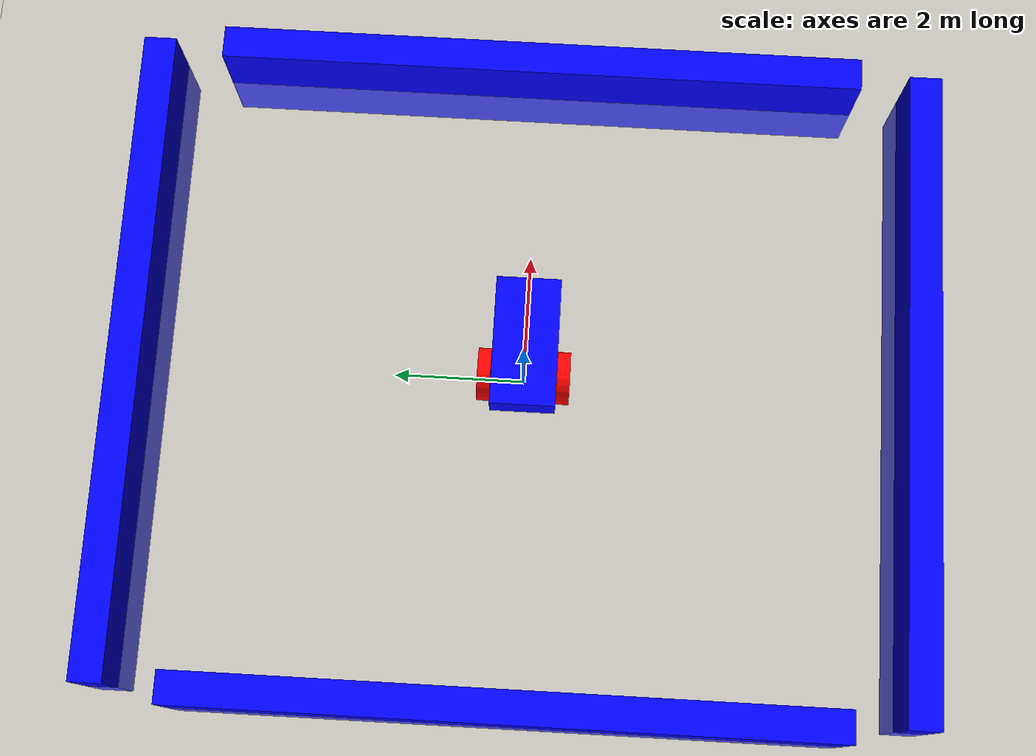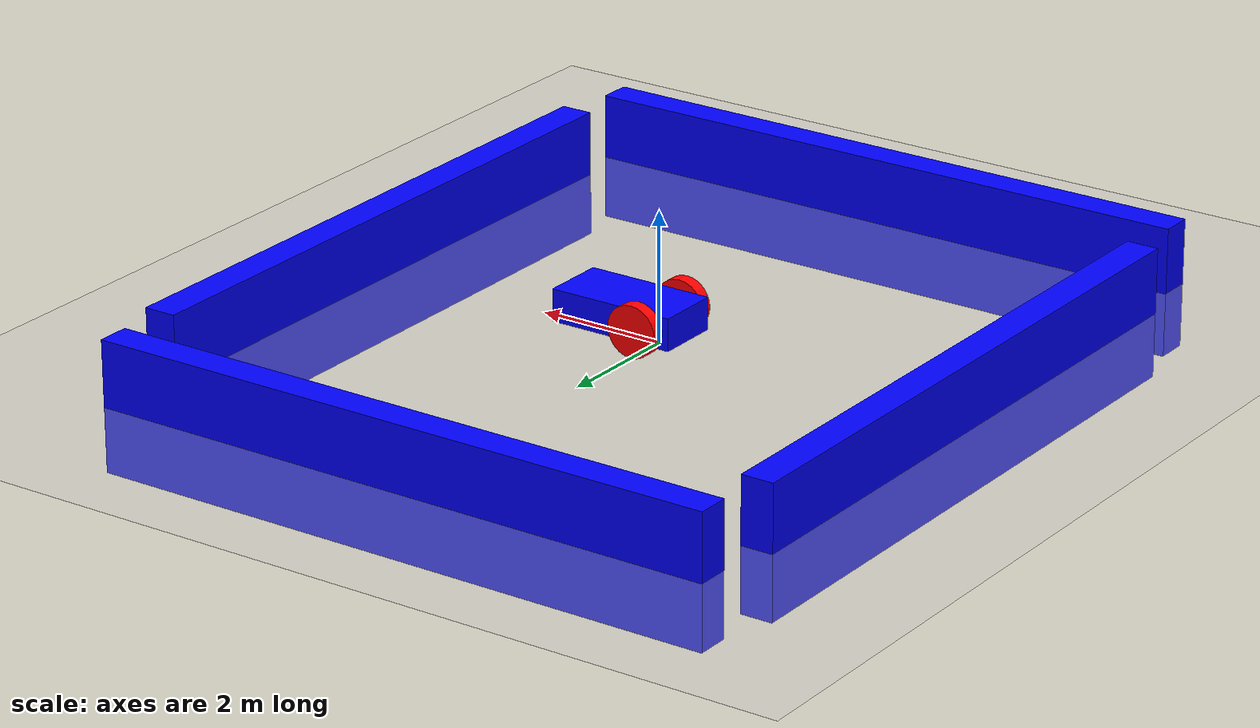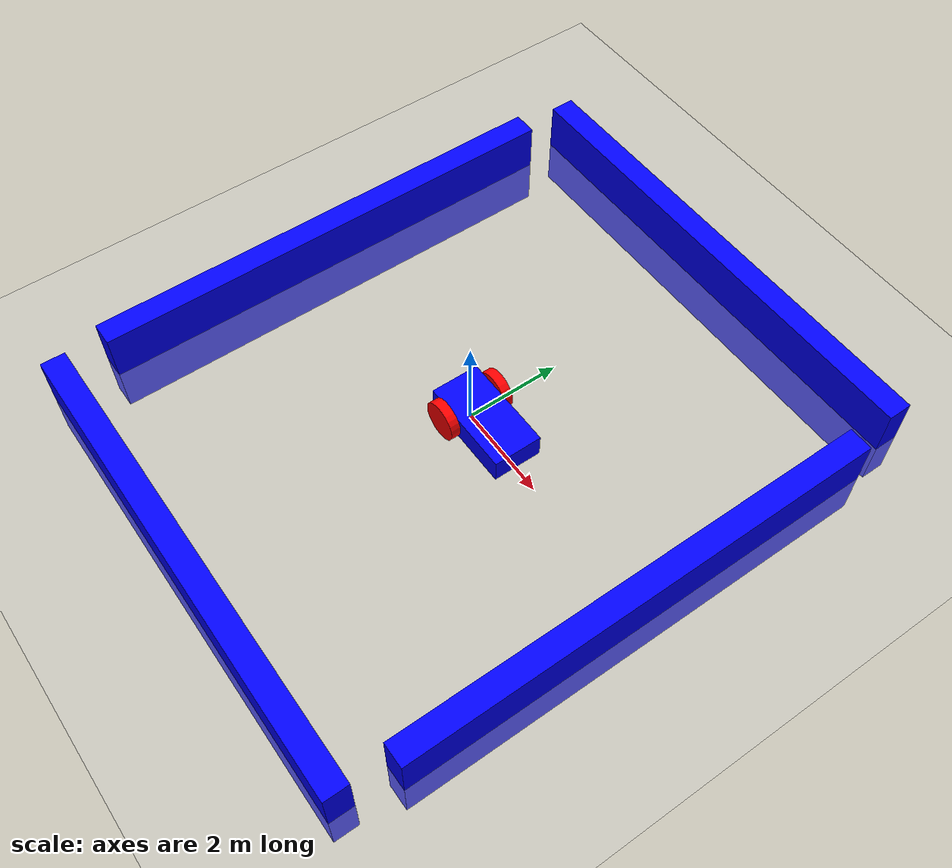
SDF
<?xml version="1.0" ?>
<sdf version="1.7">
    <world name="car_world">
        <plugin filename="libignition-gazebo-imu-system.so"
            name="ignition::gazebo::systems::Imu">
        </plugin>
        <plugin filename="libignition-gazebo-contact-system.so"
            name="ignition::gazebo::systems::Contact">
        </plugin>
       <physics name="1ms" type="ode">
            <max_step_size>0.001</max_step_size>
            <real_time_factor>1.0</real_time_factor>
        </physics>
        <plugin
            filename="ignition-gazebo-physics-system"
            name="ignition::gazebo::systems::Physics">
        </plugin>
        <plugin
            filename="ignition-gazebo-user-commands-system"
            name="ignition::gazebo::systems::UserCommands">
        </plugin>
        <plugin
            filename="ignition-gazebo-scene-broadcaster-system"
            name="ignition::gazebo::systems::SceneBroadcaster">
        </plugin>
        <plugin
           filename="ignition-gazebo-imu-system"
           name="ignition::gazebo::systems::Imu">
        </plugin>
        <plugin
            filename="ignition-gazebo-sensors-system"
            name="ignition::gazebo::systems::Sensors">
            <render_engine>ogre2</render_engine>
        </plugin>
        <plugin
            filename="ignition-gazebo-contact-system"
            name="ignition::gazebo::systems::Contact">
        </plugin>

        <gui fullscreen="0">

            <!-- 3D scene -->
            <plugin filename="GzScene3D" name="3D View">
                <ignition-gui>
                <title>3D View</title>
                <property type="bool" key="showTitleBar">false</property>
                <property type="string" key="state">docked</property>
                </ignition-gui>

                <engine>ogre2</engine>
                <scene>scene</scene>
                <ambient_light>0.4 0.4 0.4</ambient_light>
                <background_color>0.8 0.8 0.8</background_color>
            </plugin>

            <!-- World control -->
            <plugin filename="WorldControl" name="World control">
                <ignition-gui>
                <title>World control</title>
                <property type="bool" key="showTitleBar">false</property>
                <property type="bool" key="resizable">false</property>
                <property type="double" key="height">72</property>
                <property type="double" key="width">121</property>
                <property type="double" key="z">1</property>

                <property type="string" key="state">floating</property>
                <anchors target="3D View">
                    <line own="left" target="left"/>
                    <line own="bottom" target="bottom"/>
                </anchors>
                </ignition-gui>

                <play_pause>true</play_pause>
                <step>true</step>
                <start_paused>true</start_paused>
                <service>/world/Moving_robot/control</service>
                <stats_topic>/world/Moving_robot/stats</stats_topic>
            </plugin>

            <!-- World statistics -->
            <plugin filename="WorldStats" name="World stats">
                <ignition-gui>
                <title>World stats</title>
                <property type="bool" key="showTitleBar">false</property>
                <property type="bool" key="resizable">false</property>
                <property type="double" key="height">110</property>
                <property type="double" key="width">290</property>
                <property type="double" key="z">1</property>

                <property type="string" key="state">floating</property>
                <anchors target="3D View">
                    <line own="right" target="right"/>
                    <line own="bottom" target="bottom"/>
                </anchors>
                </ignition-gui>

                <sim_time>true</sim_time>
                <real_time>true</real_time>
                <real_time_factor>true</real_time_factor>
                <iterations>true</iterations>
                <topic>/world/Moving_robot/stats</topic>

            </plugin>

            <!-- Entity tree -->
            <plugin filename="EntityTree" name="Entity tree">
            </plugin>

            <!-- KeyPublisher plugin-->
            <plugin filename="KeyPublisher" name="Key Publisher"/>

        </gui>

<model name='vehicle_blue' canonical_link='chassis'>

<static> false </static>

    <pose relative_to='world'>0 0 0 0 0 0</pose>

    <frame name="lidar_frame" attached_to='chassis'>
        <pose>0.8 0 0.5 0 0 0</pose>
    </frame>

<link name='chassis'>

    <pose relative_to='__model__'>0.5 0 0.4 0 0 0</pose>

<inertial> <!--inertial properties of the link mass, inertia matrix-->
<mass>1.14395</mass>
<inertia>
<ixx>0.095329</ixx>
<ixy>0</ixy>
<ixz>0</ixz>
<iyy>0.381317</iyy>
<iyz>0</iyz>
<izz>0.476646</izz>
</inertia>
</inertial>
<visual name='visual'>
<geometry>
<box>
<size>2.0 1.0 0.5</size>
</box>
</geometry>
      <!--let's add color to our link-->
        <material>
            <ambient>0.0 0.0 1.0 1</ambient>
         <diffuse>0.0 0.0 1.0 1</diffuse>
            <specular>0.0 0.0 1.0 1</specular>
        </material>
    </visual>
            <collision name='collision'>
            <geometry>
                <box>
                    <size>2.0 1.0 0.5</size>
                </box>
            </geometry>
        </collision>

        <sensor name="imu_sensor" type="imu">
    <always_on>1</always_on>
    <update_rate>1</update_rate>
    <visualize>true</visualize>
    <topic>imu</topic>
</sensor>

<sensor name='gpu_lidar' type='gpu_lidar'>
    <pose relative_to='lidar_frame'>0 0 0 0 0 0</pose>
    <topic>lidar</topic>
    <update_rate>100</update_rate>
    <ray>
        <scan>
            <horizontal>
                <samples>640</samples>
                <resolution>1</resolution>
                <min_angle>-1.396263</min_angle>
                <max_angle>1.396263</max_angle>
            </horizontal>
            <vertical>
                <samples>1</samples>
                <resolution>1</resolution>
                <min_angle>0</min_angle>
                <max_angle>0</max_angle>
            </vertical>
        </scan>
        <range>
            <min>0.1</min>
            <max>10</max>
            <resolution>0.01</resolution>
        </range>
    </ray>
    <always_on>1</always_on>
    <visualize>true</visualize>
</sensor>
    </link>

    <link name='left_wheel'>
    <pose relative_to="chassis">-0.5 0.6 0 -1.5707 0 0</pose>
    <inertial>
        <mass>1</mass>
        <inertia>
            <ixx>0.043333</ixx>
            <ixy>0</ixy>
            <ixz>0</ixz>
            <iyy>0.043333</iyy>
            <iyz>0</iyz>
            <izz>0.08</izz>
        </inertia>
    </inertial>
        <visual name='visual'>
        <geometry>
            <cylinder>
                <radius>0.4</radius>
                <length>0.2</length>
            </cylinder>
        </geometry>
        <material>
            <ambient>1.0 0.0 0.0 1</ambient>
            <diffuse>1.0 0.0 0.0 1</diffuse>
            <specular>1.0 0.0 0.0 1</specular>
        </material>
    </visual>
    <collision name='collision'>
        <geometry>
            <cylinder>
                <radius>0.4</radius>
                <length>0.2</length>
            </cylinder>
        </geometry>
    </collision>
    </link>

   <link name='right_wheel'>
    <pose relative_to="chassis">-0.5 -0.6 0 -1.5707 0 0</pose>
    <inertial>
        <mass>1</mass>
        <inertia>
            <ixx>0.043333</ixx>
            <ixy>0</ixy>
            <ixz>0</ixz>
            <iyy>0.043333</iyy>
            <iyz>0</iyz>
            <izz>0.08</izz>
        </inertia>
    </inertial>
        <visual name='visual'>
        <geometry>
            <cylinder>
                <radius>0.4</radius>
                <length>0.2</length>
            </cylinder>
        </geometry>
        <material>
            <ambient>1.0 0.0 0.0 1</ambient>
            <diffuse>1.0 0.0 0.0 1</diffuse>
            <specular>1.0 0.0 0.0 1</specular>
        </material>
    </visual>
    <collision name='collision'>
        <geometry>
            <cylinder>
                <radius>0.4</radius>
                <length>0.2</length>
            </cylinder>
        </geometry>
    </collision>
</link>

<frame name="caster_frame" attached_to='chassis'>
    <pose>0.8 0 -2.2 0 0 0</pose>
</frame>

<!--caster wheel-->
<link name='caster'>
        <pose relative_to='caster_frame'>0 0 2 0 0 0</pose>
    <inertial>
        <mass>1</mass>
        <inertia>
            <ixx>0.016</ixx>
            <ixy>0</ixy>
            <ixz>0</ixz>
            <iyy>0.016</iyy>
            <iyz>0</iyz>
            <izz>0.016</izz>
        </inertia>
    </inertial>
    <visual name='visual'>
        <geometry>
            <sphere>
                <radius>0.2</radius>
            </sphere>
        </geometry>
        <material>
            <ambient>0.0 1 0.0 1</ambient>
            <diffuse>0.0 1 0.0 1</diffuse>
            <specular>0.0 1 0.0 1</specular>
        </material>
    </visual>
    <collision name='collision'>
        <geometry>
            <sphere>
                <radius>0.2</radius>
            </sphere>
        </geometry>
    </collision>
</link>
<joint name='left_wheel_joint' type='revolute'>
    <pose relative_to='left_wheel'/>
        <parent>chassis</parent>
    <child>left_wheel</child>
    <axis>
        <xyz expressed_in='__model__'>0 1 0</xyz> <!--can be defined as any frame or even arbitrary frames-->
        <limit>
            <lower>-1.79769e+308</lower>    <!--negative infinity-->
            <upper>1.79769e+308</upper>     <!--positive infinity-->
        </limit>
    </axis>
</joint>
<joint name='right_wheel_joint' type='revolute'>
    <pose relative_to='right_wheel'/>
    <parent>chassis</parent>
    <child>right_wheel</child>
    <axis>
        <xyz expressed_in='__model__'>0 1 0</xyz>
        <limit>
            <lower>-1.79769e+308</lower>    <!--negative infinity-->
            <upper>1.79769e+308</upper>     <!--positive infinity-->
        </limit>
    </axis>
</joint>
<joint name='caster_wheel' type='ball'>
    <parent>chassis</parent>
    <child>caster</child>
</joint>

<plugin
    filename="libignition-gazebo-diff-drive-system.so"
    name="ignition::gazebo::systems::DiffDrive">
    <left_joint>left_wheel_joint</left_joint>
    <right_joint>right_wheel_joint</right_joint>
    <wheel_separation>1.2</wheel_separation>
    <wheel_radius>0.4</wheel_radius>
    <odom_publish_frequency>1</odom_publish_frequency>
    <topic>cmd_vel</topic>
</plugin>

<!-- Move forward/backward -->
<plugin filename="libignition-gazebo-triggered-publisher-system.so"
        name="ignition::gazebo::systems::TriggeredPublisher">
    <input type="ignition.msgs.Int32" topic="/keyboard/keypress">
        <match field="data">16777235</match>

    </input>
    <output type="ignition.msgs.Twist" topic="/cmd_vel">
        linear: {x: 0.5}, angular: {z: 0.0}
    </output>
</plugin>
<plugin filename="libignition-gazebo-triggered-publisher-system.so"
        name="ignition::gazebo::systems::TriggeredPublisher">
    <input type="ignition.msgs.Int32" topic="/keyboard/keypress">
        <match field="data">16777237</match>
    </input>
    <output type="ignition.msgs.Twist" topic="/cmd_vel">
        linear: {x: -0.5}, angular: {z: 0.0}
    </output>
</plugin>
  <!--stop when hit the wall-->
        <plugin filename="ignition-gazebo-triggered-publisher-system"
                name="ignition::gazebo::systems::TriggeredPublisher">
            <input type="ignition.msgs.Boolean" topic="/wall/touched">
                <match>data: true</match>
            </input>
            <output type="ignition.msgs.Twist" topic="/cmd_vel">
                linear: {x: -0.50}, angular: {z: 0.0}
            </output>
        </plugin>
</model>

<model name='wall'>
    <static>true</static>
    <pose>5 0 0 0 0 0</pose><!--pose relative to the world-->
      <link name='box'>
        <visual name='visual'>
            <geometry>
                <box>
                    <size>0.5 10.0 2.0</size>
                      <sensor name='sensor_contact' type='contact'>
                        <contact>
                        <collision>collision</collision>
                        </contact>
                     </sensor>
                </box>
            </geometry>
            <!--let's add color to our link-->
            <material>
                <ambient>0.0 0.0 1.0 1</ambient>
                <diffuse>0.0 0.0 1.0 1</diffuse>
                <specular>0.0 0.0 1.0 1</specular>
            </material>
        </visual>
        <collision name='collision'>
            <geometry>
                <box>
                    <size>0.5 10.0 2.0</size>
                </box>
            </geometry>
        </collision>
         <sensor name='sensor_contact' type='contact'>
                    <contact>
                        <collision>collision</collision>
                    </contact>
                </sensor>
            </link>
            <plugin filename="ignition-gazebo-touchplugin-system"
                    name="ignition::gazebo::systems::TouchPlugin">
                <target>vehicle_blue</target>
                <namespace>wall</namespace>
                <time>0.001</time>
                <enabled>true</enabled>
            </plugin>
</model>

<model name='wal_2'>
    <static>true</static>
    <pose>0 -6 0 0 0 1.57</pose><!--pose relative to the world-->
      <link name='box'>
        <visual name='visual'>
            <geometry>
                <box>
                    <size>0.5 10.0 2.0</size>

                </box>
            </geometry>
            <!--let's add color to our link-->
            <material>
                <ambient>0.0 0.0 1.0 1</ambient>
                <diffuse>0.0 0.0 1.0 1</diffuse>
                <specular>0.0 0.0 1.0 1</specular>
            </material>
        </visual>
        <collision name='collision'>
            <geometry>
                <box>
                    <size>0.5 10.0 2.0</size>
                </box>
            </geometry>
        </collision>

            </link>

</model>

<model name='wal_3'>
    <static>true</static>
    <pose>0 6 0 0 0 1.57</pose><!--pose relative to the world-->
      <link name='box'>
        <visual name='visual'>
       <geometry>
                <box>
                    <size>0.5 10.0 2.0</size>
                </box>
            </geometry>
            <!--let's add color to our link-->
            <material>
                <ambient>0.0 0.0 1.0 1</ambient>
                <diffuse>0.0 0.0 1.0 1</diffuse>
                <specular>0.0 0.0 1.0 1</specular>
            </material>
        </visual>
        <collision name='collision'>
            <geometry>
                <box>
                    <size>0.5 10.0 2.0</size>
                </box>
            </geometry>
        </collision>
          </link>

</model>

<model name='wall_1'>
    <static>true</static>
    <pose>-5 0 0 0 0 0</pose><!--pose relative to the world-->
      <link name='box'>
        <visual name='visual'>
            <geometry>
                <box>
                    <size>0.5 10.0 2.0</size>

                </box>
            </geometry>
            <!--let's add color to our link-->
            <material>
                <ambient>0.0 0.0 1.0 1</ambient>
                <diffuse>0.0 0.0 1.0 1</diffuse>
                <specular>0.0 0.0 1.0 1</specular>
            </material>
        </visual>
        <collision name='collision'>
            <geometry>
                <box>
                    <size>0.5 10.0 2.0</size>
                </box>
            </geometry>
        </collision>

            </link>

</model>

<model name="ground_plane">
       <static>true</static>
       <link name="link">
            <collision name="collision">
                <geometry>
                    <plane>
                    <normal>0 0 1</normal>
                    </plane>
                </geometry>
            </collision>
            <visual name="visual">
                <geometry>
                    <plane>
                    <normal>0 0 1</normal>
                    <size>100 100</size>
                    </plane>
                </geometry>
                <material>
                    <ambient>0.8 0.8 0.8 1</ambient>
                    <diffuse>0.8 0.8 0.8 1</diffuse>
                    <specular>0.8 0.8 0.8 1</specular>
                </material>
            </visual>
       </link>
</model>

<!-- Add the sun (directional light) -->
    <light type="directional" name="sun">
      <cast_shadows>true</cast_shadows>
      <pose>0 0 10 0 0 0</pose>  <!-- Position the light high above the scene -->
      <diffuse>1.0 1.0 1.0 1</diffuse>  <!-- Color of the light -->
      <specular>0.1 0.1 0.1 1</specular>  <!-- Specular reflection -->
      <attenuation>
        <range>1000</range>  <!-- Maximum distance the light can reach -->
        <constant>0.9</constant>
        <linear>0.01</linear>
        <quadratic>0.001</quadratic>
      </attenuation>
      <direction>-0.5 0.5 -1</direction>  <!-- Light direction (downwards) -->
    </light>

    </world>
</sdf>
